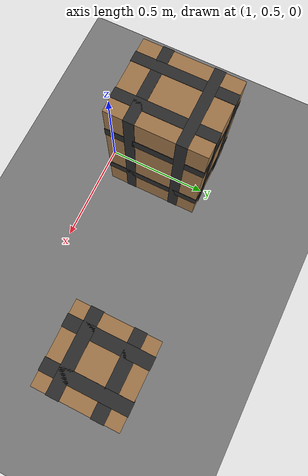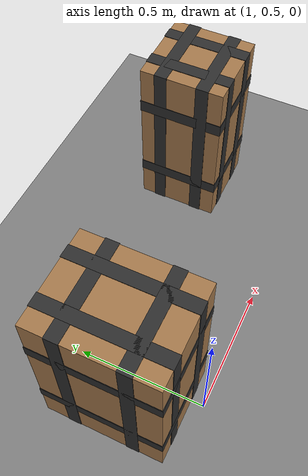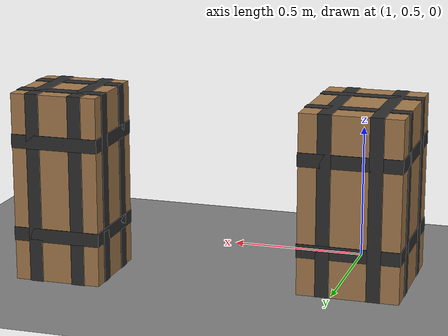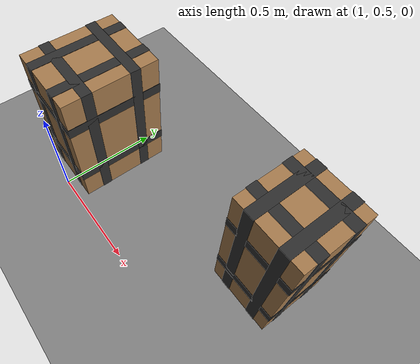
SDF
<sdf version="1.9">
 <world name="ecps295_lowbox_s28">
  <model name="ground_plane">
   <static>true</static>
   <link name="link">
    <collision name="collision">
     <geometry><plane><normal>0 0 1</normal><size>50 50</size></plane></geometry>
    </collision>
    <visual name="visual">
     <geometry><plane><normal>0 0 1</normal><size>50 50</size></plane></geometry>
     <material><ambient>0.5 0.5 0.5 1</ambient><diffuse>0.5 0.5 0.5 1</diffuse></material>
    </visual>
   </link>
  </model>
  <model name="lb2">
   <static>true</static>
   <pose>1.98 0.98 0.345 0 0 0</pose>
   <link name="link">
    <collision name="c"><geometry><box><size>0.32 0.33 0.69</size></box></geometry></collision>
    <visual name="v">
     <geometry><box><size>0.32 0.33 0.69</size></box></geometry>
     <material><ambient>0.65 0.48 0.30 1</ambient><diffuse>0.65 0.48 0.30 1</diffuse></material>
    </visual>
    <visual name="tape_ring0">
     <pose>0.000 0.000 -0.172 0 0 0</pose>
     <geometry><box><size>0.324 0.334 0.050</size></box></geometry>
     <material><ambient>0.18 0.18 0.18 1</ambient><diffuse>0.18 0.18 0.18 1</diffuse></material>
    </visual>
    <visual name="tape_bx0">
     <pose>-0.080 0.000 0.000 0 0 0</pose>
     <geometry><box><size>0.050 0.334 0.694</size></box></geometry>
     <material><ambient>0.18 0.18 0.18 1</ambient><diffuse>0.18 0.18 0.18 1</diffuse></material>
    </visual>
    <visual name="tape_by0">
     <pose>0.000 -0.083 0.000 0 0 0</pose>
     <geometry><box><size>0.324 0.050 0.694</size></box></geometry>
     <material><ambient>0.18 0.18 0.18 1</ambient><diffuse>0.18 0.18 0.18 1</diffuse></material>
    </visual>
    <visual name="tape_ring1">
     <pose>0.000 0.000 0.172 0 0 0</pose>
     <geometry><box><size>0.324 0.334 0.050</size></box></geometry>
     <material><ambient>0.18 0.18 0.18 1</ambient><diffuse>0.18 0.18 0.18 1</diffuse></material>
    </visual>
    <visual name="tape_bx1">
     <pose>0.080 0.000 0.000 0 0 0</pose>
     <geometry><box><size>0.050 0.334 0.694</size></box></geometry>
     <material><ambient>0.18 0.18 0.18 1</ambient><diffuse>0.18 0.18 0.18 1</diffuse></material>
    </visual>
    <visual name="tape_by1">
     <pose>0.000 0.083 0.000 0 0 0</pose>
     <geometry><box><size>0.324 0.050 0.694</size></box></geometry>
     <material><ambient>0.18 0.18 0.18 1</ambient><diffuse>0.18 0.18 0.18 1</diffuse></material>
    </visual>
   </link>
  </model>
  <model name="lb3">
   <static>true</static>
   <pose>0.94 0.78 0.328 0 0 0</pose>
   <link name="link">
    <collision name="c"><geometry><box><size>0.37 0.46 0.66</size></box></geometry></collision>
    <visual name="v">
     <geometry><box><size>0.37 0.46 0.66</size></box></geometry>
     <material><ambient>0.65 0.48 0.30 1</ambient><diffuse>0.65 0.48 0.30 1</diffuse></material>
    </visual>
    <visual name="tape_ring0">
     <pose>0.000 0.000 -0.165 0 0 0</pose>
     <geometry><box><size>0.374 0.464 0.050</size></box></geometry>
     <material><ambient>0.18 0.18 0.18 1</ambient><diffuse>0.18 0.18 0.18 1</diffuse></material>
    </visual>
    <visual name="tape_bx0">
     <pose>-0.092 0.000 0.000 0 0 0</pose>
     <geometry><box><size>0.050 0.464 0.664</size></box></geometry>
     <material><ambient>0.18 0.18 0.18 1</ambient><diffuse>0.18 0.18 0.18 1</diffuse></material>
    </visual>
    <visual name="tape_by0">
     <pose>0.000 -0.115 0.000 0 0 0</pose>
     <geometry><box><size>0.374 0.050 0.664</size></box></geometry>
     <material><ambient>0.18 0.18 0.18 1</ambient><diffuse>0.18 0.18 0.18 1</diffuse></material>
    </visual>
    <visual name="tape_ring1">
     <pose>0.000 0.000 0.165 0 0 0</pose>
     <geometry><box><size>0.374 0.464 0.050</size></box></geometry>
     <material><ambient>0.18 0.18 0.18 1</ambient><diffuse>0.18 0.18 0.18 1</diffuse></material>
    </visual>
    <visual name="tape_bx1">
     <pose>0.092 0.000 0.000 0 0 0</pose>
     <geometry><box><size>0.050 0.464 0.664</size></box></geometry>
     <material><ambient>0.18 0.18 0.18 1</ambient><diffuse>0.18 0.18 0.18 1</diffuse></material>
    </visual>
    <visual name="tape_by1">
     <pose>0.000 0.115 0.000 0 0 0</pose>
     <geometry><box><size>0.374 0.050 0.664</size></box></geometry>
     <material><ambient>0.18 0.18 0.18 1</ambient><diffuse>0.18 0.18 0.18 1</diffuse></material>
    </visual>
   </link>
  </model>
 </world>
</sdf>
